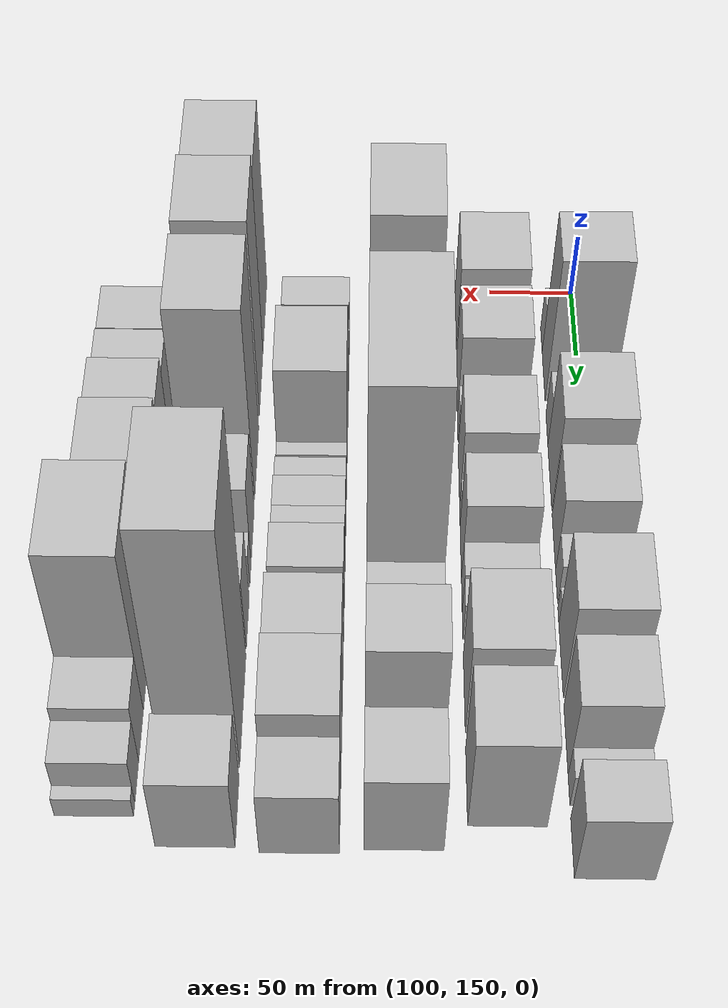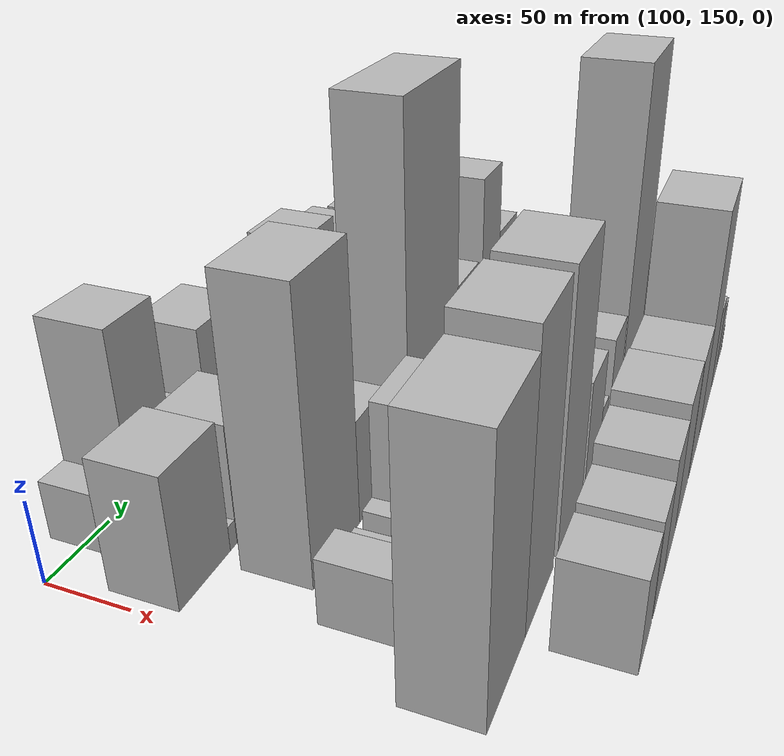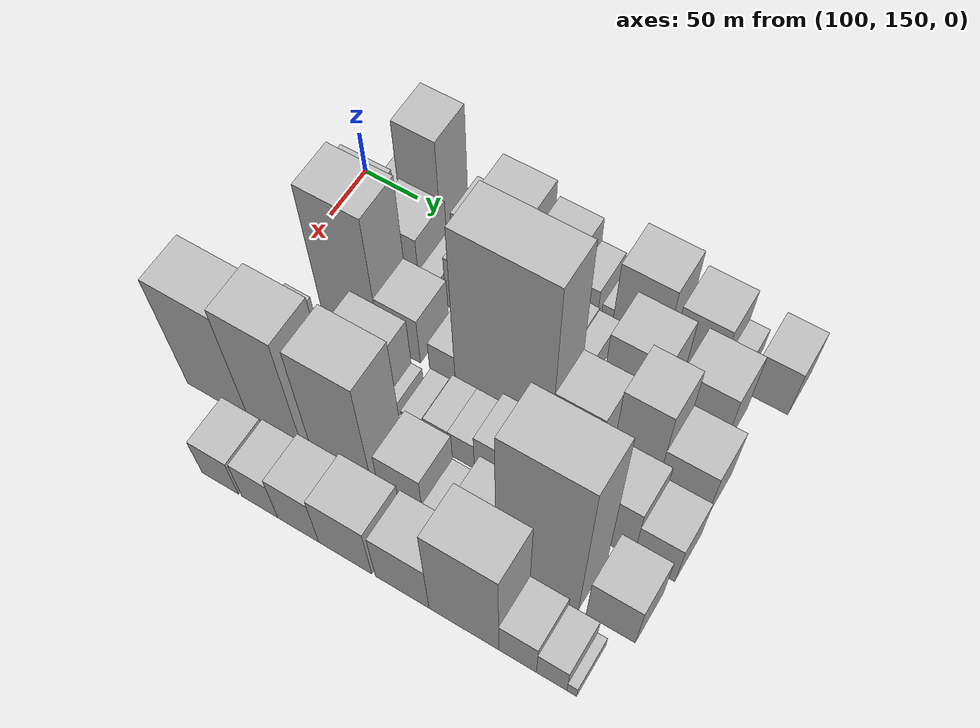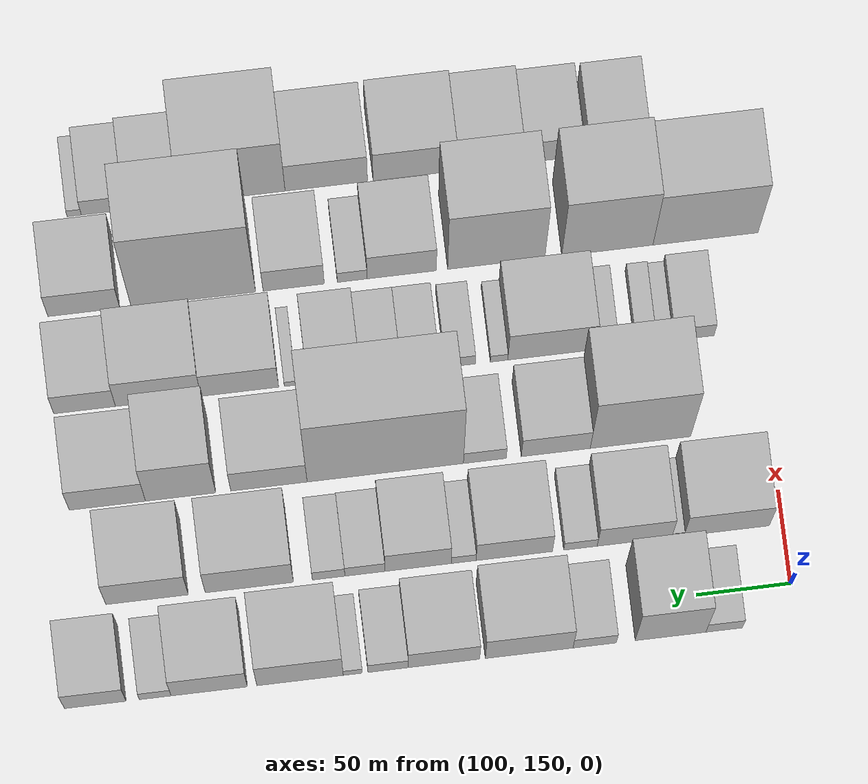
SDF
<sdf version="1.6">
 <world name="default">
  <model name="building_33">
   <static>1</static>
   <pose>100.0000 187.8211 0 0.000000 0.000000 0.000000</pose>
   <link name="link">
    <pose>0 0 18.00 0 0 0</pose>
    <collision name="collision"><geometry><box><size>40.0000 19.4261 36.0000</size></box></geometry></collision>
    <visual name="visual">
     <cast_shadows>0</cast_shadows>
     <geometry><box><size>40.0000 19.4261 36.0000</size></box></geometry>
     <material>
      <script>
       <uri>model://HANNAS_wall/materials/scripts</uri>
       <uri>model://HANNAS_wall/materials/textures</uri>
       <name>vrc/HANNAS_wall</name>
      </script>
     </material>
    </visual>
   </link>
  </model>
  <model name="building_34">
   <static>1</static>
   <pose>100.0000 216.2699 0 0.000000 0.000000 0.000000</pose>
   <link name="link">
    <pose>0 0 60.00 0 0 0</pose>
    <collision name="collision"><geometry><box><size>40.0000 37.4716 120.0000</size></box></geometry></collision>
    <visual name="visual">
     <cast_shadows>0</cast_shadows>
     <geometry><box><size>40.0000 37.4716 120.0000</size></box></geometry>
     <material>
      <script>
       <uri>model://HANNAS_wall/materials/scripts</uri>
       <uri>model://HANNAS_wall/materials/textures</uri>
       <name>vrc/HANNAS_wall</name>
      </script>
     </material>
    </visual>
   </link>
  </model>
  <model name="building_35">
   <static>1</static>
   <pose>100.0000 256.4947 0 0.000000 0.000000 0.000000</pose>
   <link name="link">
    <pose>0 0 19.50 0 0 0</pose>
    <collision name="collision"><geometry><box><size>40.0000 22.9780 39.0000</size></box></geometry></collision>
    <visual name="visual">
     <cast_shadows>0</cast_shadows>
     <geometry><box><size>40.0000 22.9780 39.0000</size></box></geometry>
     <material>
      <script>
       <uri>model://HANNAS_wall/materials/scripts</uri>
       <uri>model://HANNAS_wall/materials/textures</uri>
       <name>vrc/HANNAS_wall</name>
      </script>
     </material>
    </visual>
   </link>
  </model>
  <model name="building_36">
   <static>1</static>
   <pose>100.0000 291.1873 0 0.000000 0.000000 0.000000</pose>
   <link name="link">
    <pose>0 0 42.00 0 0 0</pose>
    <collision name="collision"><geometry><box><size>40.0000 46.4072 84.0000</size></box></geometry></collision>
    <visual name="visual">
     <cast_shadows>0</cast_shadows>
     <geometry><box><size>40.0000 46.4072 84.0000</size></box></geometry>
     <material>
      <script>
       <uri>model://HANNAS_wall/materials/scripts</uri>
       <uri>model://HANNAS_wall/materials/textures</uri>
       <name>vrc/HANNAS_wall</name>
      </script>
     </material>
    </visual>
   </link>
  </model>
  <model name="building_37">
   <static>1</static>
   <pose>100.0000 336.2327 0 0.000000 0.000000 0.000000</pose>
   <link name="link">
    <pose>0 0 33.00 0 0 0</pose>
    <collision name="collision"><geometry><box><size>40.0000 37.6837 66.0000</size></box></geometry></collision>
    <visual name="visual">
     <cast_shadows>0</cast_shadows>
     <geometry><box><size>40.0000 37.6837 66.0000</size></box></geometry>
     <material>
      <script>
       <uri>model://HANNAS_wall/materials/scripts</uri>
       <uri>model://HANNAS_wall/materials/textures</uri>
       <name>vrc/HANNAS_wall</name>
      </script>
     </material>
    </visual>
   </link>
  </model>
  <model name="building_38">
   <static>1</static>
   <pose>100.0000 365.7849 0 0.000000 0.000000 0.000000</pose>
   <link name="link">
    <pose>0 0 18.00 0 0 0</pose>
    <collision name="collision"><geometry><box><size>40.0000 21.4206 36.0000</size></box></geometry></collision>
    <visual name="visual">
     <cast_shadows>0</cast_shadows>
     <geometry><box><size>40.0000 21.4206 36.0000</size></box></geometry>
     <material>
      <script>
       <uri>model://HANNAS_wall/materials/scripts</uri>
       <uri>model://HANNAS_wall/materials/textures</uri>
       <name>vrc/HANNAS_wall</name>
      </script>
     </material>
    </visual>
   </link>
  </model>
  <model name="building_39">
   <static>1</static>
   <pose>100.0000 384.5352 0 0.000000 0.000000 0.000000</pose>
   <link name="link">
    <pose>0 0 10.50 0 0 0</pose>
    <collision name="collision"><geometry><box><size>40.0000 10.0801 21.0000</size></box></geometry></collision>
    <visual name="visual">
     <cast_shadows>0</cast_shadows>
     <geometry><box><size>40.0000 10.0801 21.0000</size></box></geometry>
     <material>
      <script>
       <uri>model://HANNAS_wall/materials/scripts</uri>
       <uri>model://HANNAS_wall/materials/textures</uri>
       <name>vrc/HANNAS_wall</name>
      </script>
     </material>
    </visual>
   </link>
  </model>
  <model name="building_40">
   <static>1</static>
   <pose>100.0000 412.4168 0 0.000000 0.000000 0.000000</pose>
   <link name="link">
    <pose>0 0 43.50 0 0 0</pose>
    <collision name="collision"><geometry><box><size>40.0000 45.6829 87.0000</size></box></geometry></collision>
    <visual name="visual">
     <cast_shadows>0</cast_shadows>
     <geometry><box><size>40.0000 45.6829 87.0000</size></box></geometry>
     <material>
      <script>
       <uri>model://HANNAS_wall/materials/scripts</uri>
       <uri>model://HANNAS_wall/materials/textures</uri>
       <name>vrc/HANNAS_wall</name>
      </script>
     </material>
    </visual>
   </link>
  </model>
  <model name="building_41">
   <static>1</static>
   <pose>100.0000 460.4305 0 0.000000 0.000000 0.000000</pose>
   <link name="link">
    <pose>0 0 36.00 0 0 0</pose>
    <collision name="collision"><geometry><box><size>40.0000 40.3446 72.0000</size></box></geometry></collision>
    <visual name="visual">
     <cast_shadows>0</cast_shadows>
     <geometry><box><size>40.0000 40.3446 72.0000</size></box></geometry>
     <material>
      <script>
       <uri>model://HANNAS_wall/materials/scripts</uri>
       <uri>model://HANNAS_wall/materials/textures</uri>
       <name>vrc/HANNAS_wall</name>
      </script>
     </material>
    </visual>
   </link>
  </model>
  <model name="building_42">
   <static>1</static>
   <pose>100.0000 489.0074 0 0.000000 0.000000 0.000000</pose>
   <link name="link">
    <pose>0 0 15.00 0 0 0</pose>
    <collision name="collision"><geometry><box><size>40.0000 16.8091 30.0000</size></box></geometry></collision>
    <visual name="visual">
     <cast_shadows>0</cast_shadows>
     <geometry><box><size>40.0000 16.8091 30.0000</size></box></geometry>
     <material>
      <script>
       <uri>model://HANNAS_wall/materials/scripts</uri>
       <uri>model://HANNAS_wall/materials/textures</uri>
       <name>vrc/HANNAS_wall</name>
      </script>
     </material>
    </visual>
   </link>
  </model>
  <model name="building_43">
   <static>1</static>
   <pose>100.0000 520.6841 0 0.000000 0.000000 0.000000</pose>
   <link name="link">
    <pose>0 0 31.50 0 0 0</pose>
    <collision name="collision"><geometry><box><size>40.0000 32.5442 63.0000</size></box></geometry></collision>
    <visual name="visual">
     <cast_shadows>0</cast_shadows>
     <geometry><box><size>40.0000 32.5442 63.0000</size></box></geometry>
     <material>
      <script>
       <uri>model://HANNAS_wall/materials/scripts</uri>
       <uri>model://HANNAS_wall/materials/textures</uri>
       <name>vrc/HANNAS_wall</name>
      </script>
     </material>
    </visual>
   </link>
  </model>
  <model name="building_81">
   <static>1</static>
   <pose>152.0000 179.8842 0 0.000000 0.000000 0.000000</pose>
   <link name="link">
    <pose>0 0 39.00 0 0 0</pose>
    <collision name="collision"><geometry><box><size>40.0000 45.2372 78.0000</size></box></geometry></collision>
    <visual name="visual">
     <cast_shadows>0</cast_shadows>
     <geometry><box><size>40.0000 45.2372 78.0000</size></box></geometry>
     <material>
      <script>
       <uri>model://HANNAS_wall/materials/scripts</uri>
       <uri>model://HANNAS_wall/materials/textures</uri>
       <name>vrc/HANNAS_wall</name>
      </script>
     </material>
    </visual>
   </link>
  </model>
  <model name="building_82">
   <static>1</static>
   <pose>152.0000 205.7646 0 0.000000 0.000000 0.000000</pose>
   <link name="link">
    <pose>0 0 7.50 0 0 0</pose>
    <collision name="collision"><geometry><box><size>40.0000 6.5236 15.0000</size></box></geometry></collision>
    <visual name="visual">
     <cast_shadows>0</cast_shadows>
     <geometry><box><size>40.0000 6.5236 15.0000</size></box></geometry>
     <material>
      <script>
       <uri>model://HANNAS_wall/materials/scripts</uri>
       <uri>model://HANNAS_wall/materials/textures</uri>
       <name>vrc/HANNAS_wall</name>
      </script>
     </material>
    </visual>
   </link>
  </model>
  <model name="building_83">
   <static>1</static>
   <pose>152.0000 228.8896 0 0.000000 0.000000 0.000000</pose>
   <link name="link">
    <pose>0 0 36.00 0 0 0</pose>
    <collision name="collision"><geometry><box><size>40.0000 39.7264 72.0000</size></box></geometry></collision>
    <visual name="visual">
     <cast_shadows>0</cast_shadows>
     <geometry><box><size>40.0000 39.7264 72.0000</size></box></geometry>
     <material>
      <script>
       <uri>model://HANNAS_wall/materials/scripts</uri>
       <uri>model://HANNAS_wall/materials/textures</uri>
       <name>vrc/HANNAS_wall</name>
      </script>
     </material>
    </visual>
   </link>
  </model>
  <model name="building_84">
   <static>1</static>
   <pose>152.0000 257.6277 0 0.000000 0.000000 0.000000</pose>
   <link name="link">
    <pose>0 0 15.00 0 0 0</pose>
    <collision name="collision"><geometry><box><size>40.0000 17.7496 30.0000</size></box></geometry></collision>
    <visual name="visual">
     <cast_shadows>0</cast_shadows>
     <geometry><box><size>40.0000 17.7496 30.0000</size></box></geometry>
     <material>
      <script>
       <uri>model://HANNAS_wall/materials/scripts</uri>
       <uri>model://HANNAS_wall/materials/textures</uri>
       <name>vrc/HANNAS_wall</name>
      </script>
     </material>
    </visual>
   </link>
  </model>
  <model name="building_85">
   <static>1</static>
   <pose>152.0000 292.7494 0 0.000000 0.000000 0.000000</pose>
   <link name="link">
    <pose>0 0 34.50 0 0 0</pose>
    <collision name="collision"><geometry><box><size>40.0000 40.4939 69.0000</size></box></geometry></collision>
    <visual name="visual">
     <cast_shadows>0</cast_shadows>
     <geometry><box><size>40.0000 40.4939 69.0000</size></box></geometry>
     <material>
      <script>
       <uri>model://HANNAS_wall/materials/scripts</uri>
       <uri>model://HANNAS_wall/materials/textures</uri>
       <name>vrc/HANNAS_wall</name>
      </script>
     </material>
    </visual>
   </link>
  </model>
  <model name="building_86">
   <static>1</static>
   <pose>152.0000 319.6080 0 0.000000 0.000000 0.000000</pose>
   <link name="link">
    <pose>0 0 13.50 0 0 0</pose>
    <collision name="collision"><geometry><box><size>40.0000 13.2233 27.0000</size></box></geometry></collision>
    <visual name="visual">
     <cast_shadows>0</cast_shadows>
     <geometry><box><size>40.0000 13.2233 27.0000</size></box></geometry>
     <material>
      <script>
       <uri>model://HANNAS_wall/materials/scripts</uri>
       <uri>model://HANNAS_wall/materials/textures</uri>
       <name>vrc/HANNAS_wall</name>
      </script>
     </material>
    </visual>
   </link>
  </model>
  <model name="building_87">
   <static>1</static>
   <pose>152.0000 343.7480 0 0.000000 0.000000 0.000000</pose>
   <link name="link">
    <pose>0 0 34.50 0 0 0</pose>
    <collision name="collision"><geometry><box><size>40.0000 35.0568 69.0000</size></box></geometry></collision>
    <visual name="visual">
     <cast_shadows>0</cast_shadows>
     <geometry><box><size>40.0000 35.0568 69.0000</size></box></geometry>
     <material>
      <script>
       <uri>model://HANNAS_wall/materials/scripts</uri>
       <uri>model://HANNAS_wall/materials/textures</uri>
       <name>vrc/HANNAS_wall</name>
      </script>
     </material>
    </visual>
   </link>
  </model>
  <model name="building_88">
   <static>1</static>
   <pose>152.0000 371.9129 0 0.000000 0.000000 0.000000</pose>
   <link name="link">
    <pose>0 0 18.00 0 0 0</pose>
    <collision name="collision"><geometry><box><size>40.0000 21.2729 36.0000</size></box></geometry></collision>
    <visual name="visual">
     <cast_shadows>0</cast_shadows>
     <geometry><box><size>40.0000 21.2729 36.0000</size></box></geometry>
     <material>
      <script>
       <uri>model://HANNAS_wall/materials/scripts</uri>
       <uri>model://HANNAS_wall/materials/textures</uri>
       <name>vrc/HANNAS_wall</name>
      </script>
     </material>
    </visual>
   </link>
  </model>
  <model name="building_89">
   <static>1</static>
   <pose>152.0000 391.1874 0 0.000000 0.000000 0.000000</pose>
   <link name="link">
    <pose>0 0 16.50 0 0 0</pose>
    <collision name="collision"><geometry><box><size>40.0000 17.2762 33.0000</size></box></geometry></collision>
    <visual name="visual">
     <cast_shadows>0</cast_shadows>
     <geometry><box><size>40.0000 17.2762 33.0000</size></box></geometry>
     <material>
      <script>
       <uri>model://HANNAS_wall/materials/scripts</uri>
       <uri>model://HANNAS_wall/materials/textures</uri>
       <name>vrc/HANNAS_wall</name>
      </script>
     </material>
    </visual>
   </link>
  </model>
  <model name="building_90">
   <static>1</static>
   <pose>152.0000 433.1948 0 0.000000 0.000000 0.000000</pose>
   <link name="link">
    <pose>0 0 42.00 0 0 0</pose>
    <collision name="collision"><geometry><box><size>40.0000 46.7386 84.0000</size></box></geometry></collision>
    <visual name="visual">
     <cast_shadows>0</cast_shadows>
     <geometry><box><size>40.0000 46.7386 84.0000</size></box></geometry>
     <material>
      <script>
       <uri>model://HANNAS_wall/materials/scripts</uri>
       <uri>model://HANNAS_wall/materials/textures</uri>
       <name>vrc/HANNAS_wall</name>
      </script>
     </material>
    </visual>
   </link>
  </model>
  <model name="building_91">
   <static>1</static>
   <pose>152.0000 487.4092 0 0.000000 0.000000 0.000000</pose>
   <link name="link">
    <pose>0 0 42.00 0 0 0</pose>
    <collision name="collision"><geometry><box><size>40.0000 43.6901 84.0000</size></box></geometry></collision>
    <visual name="visual">
     <cast_shadows>0</cast_shadows>
     <geometry><box><size>40.0000 43.6901 84.0000</size></box></geometry>
     <material>
      <script>
       <uri>model://HANNAS_wall/materials/scripts</uri>
       <uri>model://HANNAS_wall/materials/textures</uri>
       <name>vrc/HANNAS_wall</name>
      </script>
     </material>
    </visual>
   </link>
  </model>
  <model name="building_135">
   <static>1</static>
   <pose>204.0000 219.2989 0 0.000000 0.000000 0.000000</pose>
   <link name="link">
    <pose>0 0 82.50 0 0 0</pose>
    <collision name="collision"><geometry><box><size>40.0000 53.4190 165.0000</size></box></geometry></collision>
    <visual name="visual">
     <cast_shadows>0</cast_shadows>
     <geometry><box><size>40.0000 53.4190 165.0000</size></box></geometry>
     <material>
      <script>
       <uri>model://HANNAS_wall/materials/scripts</uri>
       <uri>model://HANNAS_wall/materials/textures</uri>
       <name>vrc/HANNAS_wall</name>
      </script>
     </material>
    </visual>
   </link>
  </model>
  <model name="building_136">
   <static>1</static>
   <pose>204.0000 264.3498 0 0.000000 0.000000 0.000000</pose>
   <link name="link">
    <pose>0 0 31.50 0 0 0</pose>
    <collision name="collision"><geometry><box><size>40.0000 36.6829 63.0000</size></box></geometry></collision>
    <visual name="visual">
     <cast_shadows>0</cast_shadows>
     <geometry><box><size>40.0000 36.6829 63.0000</size></box></geometry>
     <material>
      <script>
       <uri>model://HANNAS_wall/materials/scripts</uri>
       <uri>model://HANNAS_wall/materials/textures</uri>
       <name>vrc/HANNAS_wall</name>
      </script>
     </material>
    </visual>
   </link>
  </model>
  <model name="building_137">
   <static>1</static>
   <pose>204.0000 302.0714 0 0.000000 0.000000 0.000000</pose>
   <link name="link">
    <pose>0 0 19.50 0 0 0</pose>
    <collision name="collision"><geometry><box><size>40.0000 22.7604 39.0000</size></box></geometry></collision>
    <visual name="visual">
     <cast_shadows>0</cast_shadows>
     <geometry><box><size>40.0000 22.7604 39.0000</size></box></geometry>
     <material>
      <script>
       <uri>model://HANNAS_wall/materials/scripts</uri>
       <uri>model://HANNAS_wall/materials/textures</uri>
       <name>vrc/HANNAS_wall</name>
      </script>
     </material>
    </visual>
   </link>
  </model>
  <model name="building_138">
   <static>1</static>
   <pose>204.0000 354.9777 0 0.000000 0.000000 0.000000</pose>
   <link name="link">
    <pose>0 0 105.00 0 0 0</pose>
    <collision name="collision"><geometry><box><size>40.0000 83.0522 210.0000</size></box></geometry></collision>
    <visual name="visual">
     <cast_shadows>0</cast_shadows>
     <geometry><box><size>40.0000 83.0522 210.0000</size></box></geometry>
     <material>
      <script>
       <uri>model://HANNAS_wall/materials/scripts</uri>
       <uri>model://HANNAS_wall/materials/textures</uri>
       <name>vrc/HANNAS_wall</name>
      </script>
     </material>
    </visual>
   </link>
  </model>
  <model name="building_139">
   <static>1</static>
   <pose>204.0000 416.7626 0 0.000000 0.000000 0.000000</pose>
   <link name="link">
    <pose>0 0 34.50 0 0 0</pose>
    <collision name="collision"><geometry><box><size>40.0000 40.5176 69.0000</size></box></geometry></collision>
    <visual name="visual">
     <cast_shadows>0</cast_shadows>
     <geometry><box><size>40.0000 40.5176 69.0000</size></box></geometry>
     <material>
      <script>
       <uri>model://HANNAS_wall/materials/scripts</uri>
       <uri>model://HANNAS_wall/materials/textures</uri>
       <name>vrc/HANNAS_wall</name>
      </script>
     </material>
    </visual>
   </link>
  </model>
  <model name="building_140">
   <static>1</static>
   <pose>204.0000 463.6547 0 0.000000 0.000000 0.000000</pose>
   <link name="link">
    <pose>0 0 61.50 0 0 0</pose>
    <collision name="collision"><geometry><box><size>40.0000 37.2666 123.0000</size></box></geometry></collision>
    <visual name="visual">
     <cast_shadows>0</cast_shadows>
     <geometry><box><size>40.0000 37.2666 123.0000</size></box></geometry>
     <material>
      <script>
       <uri>model://HANNAS_wall/materials/scripts</uri>
       <uri>model://HANNAS_wall/materials/textures</uri>
       <name>vrc/HANNAS_wall</name>
      </script>
     </material>
    </visual>
   </link>
  </model>
  <model name="building_141">
   <static>1</static>
   <pose>204.0000 502.5289 0 0.000000 0.000000 0.000000</pose>
   <link name="link">
    <pose>0 0 36.00 0 0 0</pose>
    <collision name="collision"><geometry><box><size>40.0000 40.4818 72.0000</size></box></geometry></collision>
    <visual name="visual">
     <cast_shadows>0</cast_shadows>
     <geometry><box><size>40.0000 40.4818 72.0000</size></box></geometry>
     <material>
      <script>
       <uri>model://HANNAS_wall/materials/scripts</uri>
       <uri>model://HANNAS_wall/materials/textures</uri>
       <name>vrc/HANNAS_wall</name>
      </script>
     </material>
    </visual>
   </link>
  </model>
  <model name="building_180">
   <static>1</static>
   <pose>256.0000 184.8159 0 0.000000 0.000000 0.000000</pose>
   <link name="link">
    <pose>0 0 19.50 0 0 0</pose>
    <collision name="collision"><geometry><box><size>40.0000 22.5035 39.0000</size></box></geometry></collision>
    <visual name="visual">
     <cast_shadows>0</cast_shadows>
     <geometry><box><size>40.0000 22.5035 39.0000</size></box></geometry>
     <material>
      <script>
       <uri>model://HANNAS_wall/materials/scripts</uri>
       <uri>model://HANNAS_wall/materials/textures</uri>
       <name>vrc/HANNAS_wall</name>
      </script>
     </material>
    </visual>
   </link>
  </model>
  <model name="building_181">
   <static>1</static>
   <pose>256.0000 200.5486 0 0.000000 0.000000 0.000000</pose>
   <link name="link">
    <pose>0 0 9.00 0 0 0</pose>
    <collision name="collision"><geometry><box><size>40.0000 8.9617 18.0000</size></box></geometry></collision>
    <visual name="visual">
     <cast_shadows>0</cast_shadows>
     <geometry><box><size>40.0000 8.9617 18.0000</size></box></geometry>
     <material>
      <script>
       <uri>model://HANNAS_wall/materials/scripts</uri>
       <uri>model://HANNAS_wall/materials/textures</uri>
       <name>vrc/HANNAS_wall</name>
      </script>
     </material>
    </visual>
   </link>
  </model>
  <model name="building_182">
   <static>1</static>
   <pose>256.0000 210.5303 0 0.000000 0.000000 0.000000</pose>
   <link name="link">
    <pose>0 0 12.00 0 0 0</pose>
    <collision name="collision"><geometry><box><size>40.0000 11.0018 24.0000</size></box></geometry></collision>
    <visual name="visual">
     <cast_shadows>0</cast_shadows>
     <geometry><box><size>40.0000 11.0018 24.0000</size></box></geometry>
     <material>
      <script>
       <uri>model://HANNAS_wall/materials/scripts</uri>
       <uri>model://HANNAS_wall/materials/textures</uri>
       <name>vrc/HANNAS_wall</name>
      </script>
     </material>
    </visual>
   </link>
  </model>
  <model name="building_183">
   <static>1</static>
   <pose>256.0000 230.8470 0 0.000000 0.000000 0.000000</pose>
   <link name="link">
    <pose>0 0 13.50 0 0 0</pose>
    <collision name="collision"><geometry><box><size>40.0000 11.6315 27.0000</size></box></geometry></collision>
    <visual name="visual">
     <cast_shadows>0</cast_shadows>
     <geometry><box><size>40.0000 11.6315 27.0000</size></box></geometry>
     <material>
      <script>
       <uri>model://HANNAS_wall/materials/scripts</uri>
       <uri>model://HANNAS_wall/materials/textures</uri>
       <name>vrc/HANNAS_wall</name>
      </script>
     </material>
    </visual>
   </link>
  </model>
  <model name="building_184">
   <static>1</static>
   <pose>256.0000 260.0971 0 0.000000 0.000000 0.000000</pose>
   <link name="link">
    <pose>0 0 42.00 0 0 0</pose>
    <collision name="collision"><geometry><box><size>40.0000 46.8687 84.0000</size></box></geometry></collision>
    <visual name="visual">
     <cast_shadows>0</cast_shadows>
     <geometry><box><size>40.0000 46.8687 84.0000</size></box></geometry>
     <material>
      <script>
       <uri>model://HANNAS_wall/materials/scripts</uri>
       <uri>model://HANNAS_wall/materials/textures</uri>
       <name>vrc/HANNAS_wall</name>
      </script>
     </material>
    </visual>
   </link>
  </model>
  <model name="building_185">
   <static>1</static>
   <pose>256.0000 288.1989 0 0.000000 0.000000 0.000000</pose>
   <link name="link">
    <pose>0 0 10.50 0 0 0</pose>
    <collision name="collision"><geometry><box><size>40.0000 9.3348 21.0000</size></box></geometry></collision>
    <visual name="visual">
     <cast_shadows>0</cast_shadows>
     <geometry><box><size>40.0000 9.3348 21.0000</size></box></geometry>
     <material>
      <script>
       <uri>model://HANNAS_wall/materials/scripts</uri>
       <uri>model://HANNAS_wall/materials/textures</uri>
       <name>vrc/HANNAS_wall</name>
      </script>
     </material>
    </visual>
   </link>
  </model>
  <model name="building_186">
   <static>1</static>
   <pose>256.0000 308.9904 0 0.000000 0.000000 0.000000</pose>
   <link name="link">
    <pose>0 0 15.00 0 0 0</pose>
    <collision name="collision"><geometry><box><size>40.0000 16.2481 30.0000</size></box></geometry></collision>
    <visual name="visual">
     <cast_shadows>0</cast_shadows>
     <geometry><box><size>40.0000 16.2481 30.0000</size></box></geometry>
     <material>
      <script>
       <uri>model://HANNAS_wall/materials/scripts</uri>
       <uri>model://HANNAS_wall/materials/textures</uri>
       <name>vrc/HANNAS_wall</name>
      </script>
     </material>
    </visual>
   </link>
  </model>
  <model name="building_187">
   <static>1</static>
   <pose>256.0000 330.3264 0 0.000000 0.000000 0.000000</pose>
   <link name="link">
    <pose>0 0 19.50 0 0 0</pose>
    <collision name="collision"><geometry><box><size>40.0000 20.4239 39.0000</size></box></geometry></collision>
    <visual name="visual">
     <cast_shadows>0</cast_shadows>
     <geometry><box><size>40.0000 20.4239 39.0000</size></box></geometry>
     <material>
      <script>
       <uri>model://HANNAS_wall/materials/scripts</uri>
       <uri>model://HANNAS_wall/materials/textures</uri>
       <name>vrc/HANNAS_wall</name>
      </script>
     </material>
    </visual>
   </link>
  </model>
  <model name="building_188">
   <static>1</static>
   <pose>256.0000 351.3649 0 0.000000 0.000000 0.000000</pose>
   <link name="link">
    <pose>0 0 19.50 0 0 0</pose>
    <collision name="collision"><geometry><box><size>40.0000 21.6531 39.0000</size></box></geometry></collision>
    <visual name="visual">
     <cast_shadows>0</cast_shadows>
     <geometry><box><size>40.0000 21.6531 39.0000</size></box></geometry>
     <material>
      <script>
       <uri>model://HANNAS_wall/materials/scripts</uri>
       <uri>model://HANNAS_wall/materials/textures</uri>
       <name>vrc/HANNAS_wall</name>
      </script>
     </material>
    </visual>
   </link>
  </model>
  <model name="building_189">
   <static>1</static>
   <pose>256.0000 376.2227 0 0.000000 0.000000 0.000000</pose>
   <link name="link">
    <pose>0 0 27.00 0 0 0</pose>
    <collision name="collision"><geometry><box><size>40.0000 28.0626 54.0000</size></box></geometry></collision>
    <visual name="visual">
     <cast_shadows>0</cast_shadows>
     <geometry><box><size>40.0000 28.0626 54.0000</size></box></geometry>
     <material>
      <script>
       <uri>model://HANNAS_wall/materials/scripts</uri>
       <uri>model://HANNAS_wall/materials/textures</uri>
       <name>vrc/HANNAS_wall</name>
      </script>
     </material>
    </visual>
   </link>
  </model>
  <model name="building_190">
   <static>1</static>
   <pose>256.0000 399.3882 0 0.000000 0.000000 0.000000</pose>
   <link name="link">
    <pose>0 0 7.50 0 0 0</pose>
    <collision name="collision"><geometry><box><size>40.0000 6.2684 15.0000</size></box></geometry></collision>
    <visual name="visual">
     <cast_shadows>0</cast_shadows>
     <geometry><box><size>40.0000 6.2684 15.0000</size></box></geometry>
     <material>
      <script>
       <uri>model://HANNAS_wall/materials/scripts</uri>
       <uri>model://HANNAS_wall/materials/textures</uri>
       <name>vrc/HANNAS_wall</name>
      </script>
     </material>
    </visual>
   </link>
  </model>
  <model name="building_191">
   <static>1</static>
   <pose>256.0000 426.2054 0 0.000000 0.000000 0.000000</pose>
   <link name="link">
    <pose>0 0 36.00 0 0 0</pose>
    <collision name="collision"><geometry><box><size>40.0000 41.3659 72.0000</size></box></geometry></collision>
    <visual name="visual">
     <cast_shadows>0</cast_shadows>
     <geometry><box><size>40.0000 41.3659 72.0000</size></box></geometry>
     <material>
      <script>
       <uri>model://HANNAS_wall/materials/scripts</uri>
       <uri>model://HANNAS_wall/materials/textures</uri>
       <name>vrc/HANNAS_wall</name>
      </script>
     </material>
    </visual>
   </link>
  </model>
  <model name="building_192">
   <static>1</static>
   <pose>256.0000 469.5997 0 0.000000 0.000000 0.000000</pose>
   <link name="link">
    <pose>0 0 40.50 0 0 0</pose>
    <collision name="collision"><geometry><box><size>40.0000 45.4228 81.0000</size></box></geometry></collision>
    <visual name="visual">
     <cast_shadows>0</cast_shadows>
     <geometry><box><size>40.0000 45.4228 81.0000</size></box></geometry>
     <material>
      <script>
       <uri>model://HANNAS_wall/materials/scripts</uri>
       <uri>model://HANNAS_wall/materials/textures</uri>
       <name>vrc/HANNAS_wall</name>
      </script>
     </material>
    </visual>
   </link>
  </model>
  <model name="building_193">
   <static>1</static>
   <pose>256.0000 508.7458 0 0.000000 0.000000 0.000000</pose>
   <link name="link">
    <pose>0 0 30.00 0 0 0</pose>
    <collision name="collision"><geometry><box><size>40.0000 32.8696 60.0000</size></box></geometry></collision>
    <visual name="visual">
     <cast_shadows>0</cast_shadows>
     <geometry><box><size>40.0000 32.8696 60.0000</size></box></geometry>
     <material>
      <script>
       <uri>model://HANNAS_wall/materials/scripts</uri>
       <uri>model://HANNAS_wall/materials/textures</uri>
       <name>vrc/HANNAS_wall</name>
      </script>
     </material>
    </visual>
   </link>
  </model>
  <model name="building_228">
   <static>1</static>
   <pose>308.0000 171.6152 0 0.000000 0.000000 0.000000</pose>
   <link name="link">
    <pose>0 0 75.00 0 0 0</pose>
    <collision name="collision"><geometry><box><size>40.0000 56.1193 150.0000</size></box></geometry></collision>
    <visual name="visual">
     <cast_shadows>0</cast_shadows>
     <geometry><box><size>40.0000 56.1193 150.0000</size></box></geometry>
     <material>
      <script>
       <uri>model://HANNAS_wall/materials/scripts</uri>
       <uri>model://HANNAS_wall/materials/textures</uri>
       <name>vrc/HANNAS_wall</name>
      </script>
     </material>
    </visual>
   </link>
  </model>
  <model name="building_229">
   <static>1</static>
   <pose>308.0000 224.0520 0 0.000000 0.000000 0.000000</pose>
   <link name="link">
    <pose>0 0 81.00 0 0 0</pose>
    <collision name="collision"><geometry><box><size>40.0000 48.7543 162.0000</size></box></geometry></collision>
    <visual name="visual">
     <cast_shadows>0</cast_shadows>
     <geometry><box><size>40.0000 48.7543 162.0000</size></box></geometry>
     <material>
      <script>
       <uri>model://HANNAS_wall/materials/scripts</uri>
       <uri>model://HANNAS_wall/materials/textures</uri>
       <name>vrc/HANNAS_wall</name>
      </script>
     </material>
    </visual>
   </link>
  </model>
  <model name="building_230">
   <static>1</static>
   <pose>308.0000 283.3712 0 0.000000 0.000000 0.000000</pose>
   <link name="link">
    <pose>0 0 81.00 0 0 0</pose>
    <collision name="collision"><geometry><box><size>40.0000 51.8841 162.0000</size></box></geometry></collision>
    <visual name="visual">
     <cast_shadows>0</cast_shadows>
     <geometry><box><size>40.0000 51.8841 162.0000</size></box></geometry>
     <material>
      <script>
       <uri>model://HANNAS_wall/materials/scripts</uri>
       <uri>model://HANNAS_wall/materials/textures</uri>
       <name>vrc/HANNAS_wall</name>
      </script>
     </material>
    </visual>
   </link>
  </model>
  <model name="building_231">
   <static>1</static>
   <pose>308.0000 333.7793 0 0.000000 0.000000 0.000000</pose>
   <link name="link">
    <pose>0 0 34.50 0 0 0</pose>
    <collision name="collision"><geometry><box><size>40.0000 36.9321 69.0000</size></box></geometry></collision>
    <visual name="visual">
     <cast_shadows>0</cast_shadows>
     <geometry><box><size>40.0000 36.9321 69.0000</size></box></geometry>
     <material>
      <script>
       <uri>model://HANNAS_wall/materials/scripts</uri>
       <uri>model://HANNAS_wall/materials/textures</uri>
       <name>vrc/HANNAS_wall</name>
      </script>
     </material>
    </visual>
   </link>
  </model>
  <model name="building_232">
   <static>1</static>
   <pose>308.0000 360.2006 0 0.000000 0.000000 0.000000</pose>
   <link name="link">
    <pose>0 0 15.00 0 0 0</pose>
    <collision name="collision"><geometry><box><size>40.0000 15.9105 30.0000</size></box></geometry></collision>
    <visual name="visual">
     <cast_shadows>0</cast_shadows>
     <geometry><box><size>40.0000 15.9105 30.0000</size></box></geometry>
     <material>
      <script>
       <uri>model://HANNAS_wall/materials/scripts</uri>
       <uri>model://HANNAS_wall/materials/textures</uri>
       <name>vrc/HANNAS_wall</name>
      </script>
     </material>
    </visual>
   </link>
  </model>
  <model name="building_233">
   <static>1</static>
   <pose>308.0000 391.4553 0 0.000000 0.000000 0.000000</pose>
   <link name="link">
    <pose>0 0 31.50 0 0 0</pose>
    <collision name="collision"><geometry><box><size>40.0000 32.5989 63.0000</size></box></geometry></collision>
    <visual name="visual">
     <cast_shadows>0</cast_shadows>
     <geometry><box><size>40.0000 32.5989 63.0000</size></box></geometry>
     <material>
      <script>
       <uri>model://HANNAS_wall/materials/scripts</uri>
       <uri>model://HANNAS_wall/materials/textures</uri>
       <name>vrc/HANNAS_wall</name>
      </script>
     </material>
    </visual>
   </link>
  </model>
  <model name="building_234">
   <static>1</static>
   <pose>308.0000 444.9642 0 0.000000 0.000000 0.000000</pose>
   <link name="link">
    <pose>0 0 106.50 0 0 0</pose>
    <collision name="collision"><geometry><box><size>40.0000 66.4189 213.0000</size></box></geometry></collision>
    <visual name="visual">
     <cast_shadows>0</cast_shadows>
     <geometry><box><size>40.0000 66.4189 213.0000</size></box></geometry>
     <material>
      <script>
       <uri>model://HANNAS_wall/materials/scripts</uri>
       <uri>model://HANNAS_wall/materials/textures</uri>
       <name>vrc/HANNAS_wall</name>
      </script>
     </material>
    </visual>
   </link>
  </model>
  <model name="building_235">
   <static>1</static>
   <pose>308.0000 503.3267 0 0.000000 0.000000 0.000000</pose>
   <link name="link">
    <pose>0 0 33.00 0 0 0</pose>
    <collision name="collision"><geometry><box><size>40.0000 38.3062 66.0000</size></box></geometry></collision>
    <visual name="visual">
     <cast_shadows>0</cast_shadows>
     <geometry><box><size>40.0000 38.3062 66.0000</size></box></geometry>
     <material>
      <script>
       <uri>model://HANNAS_wall/materials/scripts</uri>
       <uri>model://HANNAS_wall/materials/textures</uri>
       <name>vrc/HANNAS_wall</name>
      </script>
     </material>
    </visual>
   </link>
  </model>
  <model name="building_281">
   <static>1</static>
   <pose>360.0000 212.4084 0 0.000000 0.000000 0.000000</pose>
   <link name="link">
    <pose>0 0 27.00 0 0 0</pose>
    <collision name="collision"><geometry><box><size>40.0000 32.3245 54.0000</size></box></geometry></collision>
    <visual name="visual">
     <cast_shadows>0</cast_shadows>
     <geometry><box><size>40.0000 32.3245 54.0000</size></box></geometry>
     <material>
      <script>
       <uri>model://HANNAS_wall/materials/scripts</uri>
       <uri>model://HANNAS_wall/materials/textures</uri>
       <name>vrc/HANNAS_wall</name>
      </script>
     </material>
    </visual>
   </link>
  </model>
  <model name="building_282">
   <static>1</static>
   <pose>360.0000 247.2630 0 0.000000 0.000000 0.000000</pose>
   <link name="link">
    <pose>0 0 28.50 0 0 0</pose>
    <collision name="collision"><geometry><box><size>40.0000 31.3848 57.0000</size></box></geometry></collision>
    <visual name="visual">
     <cast_shadows>0</cast_shadows>
     <geometry><box><size>40.0000 31.3848 57.0000</size></box></geometry>
     <material>
      <script>
       <uri>model://HANNAS_wall/materials/scripts</uri>
       <uri>model://HANNAS_wall/materials/textures</uri>
       <name>vrc/HANNAS_wall</name>
      </script>
     </material>
    </visual>
   </link>
  </model>
  <model name="building_283">
   <static>1</static>
   <pose>360.0000 280.5854 0 0.000000 0.000000 0.000000</pose>
   <link name="link">
    <pose>0 0 34.50 0 0 0</pose>
    <collision name="collision"><geometry><box><size>40.0000 35.2600 69.0000</size></box></geometry></collision>
    <visual name="visual">
     <cast_shadows>0</cast_shadows>
     <geometry><box><size>40.0000 35.2600 69.0000</size></box></geometry>
     <material>
      <script>
       <uri>model://HANNAS_wall/materials/scripts</uri>
       <uri>model://HANNAS_wall/materials/textures</uri>
       <name>vrc/HANNAS_wall</name>
      </script>
     </material>
    </visual>
   </link>
  </model>
  <model name="building_284">
   <static>1</static>
   <pose>360.0000 320.5754 0 0.000000 0.000000 0.000000</pose>
   <link name="link">
    <pose>0 0 39.00 0 0 0</pose>
    <collision name="collision"><geometry><box><size>40.0000 44.7199 78.0000</size></box></geometry></collision>
    <visual name="visual">
     <cast_shadows>0</cast_shadows>
     <geometry><box><size>40.0000 44.7199 78.0000</size></box></geometry>
     <material>
      <script>
       <uri>model://HANNAS_wall/materials/scripts</uri>
       <uri>model://HANNAS_wall/materials/textures</uri>
       <name>vrc/HANNAS_wall</name>
      </script>
     </material>
    </visual>
   </link>
  </model>
  <model name="building_285">
   <static>1</static>
   <pose>360.0000 367.9522 0 0.000000 0.000000 0.000000</pose>
   <link name="link">
    <pose>0 0 37.50 0 0 0</pose>
    <collision name="collision"><geometry><box><size>40.0000 44.0338 75.0000</size></box></geometry></collision>
    <visual name="visual">
     <cast_shadows>0</cast_shadows>
     <geometry><box><size>40.0000 44.0338 75.0000</size></box></geometry>
     <material>
      <script>
       <uri>model://HANNAS_wall/materials/scripts</uri>
       <uri>model://HANNAS_wall/materials/textures</uri>
       <name>vrc/HANNAS_wall</name>
      </script>
     </material>
    </visual>
   </link>
  </model>
  <model name="building_286">
   <static>1</static>
   <pose>360.0000 417.8039 0 0.000000 0.000000 0.000000</pose>
   <link name="link">
    <pose>0 0 72.00 0 0 0</pose>
    <collision name="collision"><geometry><box><size>40.0000 55.6697 144.0000</size></box></geometry></collision>
    <visual name="visual">
     <cast_shadows>0</cast_shadows>
     <geometry><box><size>40.0000 55.6697 144.0000</size></box></geometry>
     <material>
      <script>
       <uri>model://HANNAS_wall/materials/scripts</uri>
       <uri>model://HANNAS_wall/materials/textures</uri>
       <name>vrc/HANNAS_wall</name>
      </script>
     </material>
    </visual>
   </link>
  </model>
  <model name="building_287">
   <static>1</static>
   <pose>360.0000 460.4565 0 0.000000 0.000000 0.000000</pose>
   <link name="link">
    <pose>0 0 27.00 0 0 0</pose>
    <collision name="collision"><geometry><box><size>40.0000 29.6355 54.0000</size></box></geometry></collision>
    <visual name="visual">
     <cast_shadows>0</cast_shadows>
     <geometry><box><size>40.0000 29.6355 54.0000</size></box></geometry>
     <material>
      <script>
       <uri>model://HANNAS_wall/materials/scripts</uri>
       <uri>model://HANNAS_wall/materials/textures</uri>
       <name>vrc/HANNAS_wall</name>
      </script>
     </material>
    </visual>
   </link>
  </model>
  <model name="building_288">
   <static>1</static>
   <pose>360.0000 487.0341 0 0.000000 0.000000 0.000000</pose>
   <link name="link">
    <pose>0 0 21.00 0 0 0</pose>
    <collision name="collision"><geometry><box><size>40.0000 23.5195 42.0000</size></box></geometry></collision>
    <visual name="visual">
     <cast_shadows>0</cast_shadows>
     <geometry><box><size>40.0000 23.5195 42.0000</size></box></geometry>
     <material>
      <script>
       <uri>model://HANNAS_wall/materials/scripts</uri>
       <uri>model://HANNAS_wall/materials/textures</uri>
       <name>vrc/HANNAS_wall</name>
      </script>
     </material>
    </visual>
   </link>
  </model>
  <model name="building_289">
   <static>1</static>
   <pose>360.0000 502.5735 0 0.000000 0.000000 0.000000</pose>
   <link name="link">
    <pose>0 0 9.00 0 0 0</pose>
    <collision name="collision"><geometry><box><size>40.0000 7.5593 18.0000</size></box></geometry></collision>
    <visual name="visual">
     <cast_shadows>0</cast_shadows>
     <geometry><box><size>40.0000 7.5593 18.0000</size></box></geometry>
     <material>
      <script>
       <uri>model://HANNAS_wall/materials/scripts</uri>
       <uri>model://HANNAS_wall/materials/textures</uri>
       <name>vrc/HANNAS_wall</name>
      </script>
     </material>
    </visual>
   </link>
  </model>
 </world>
</sdf>
